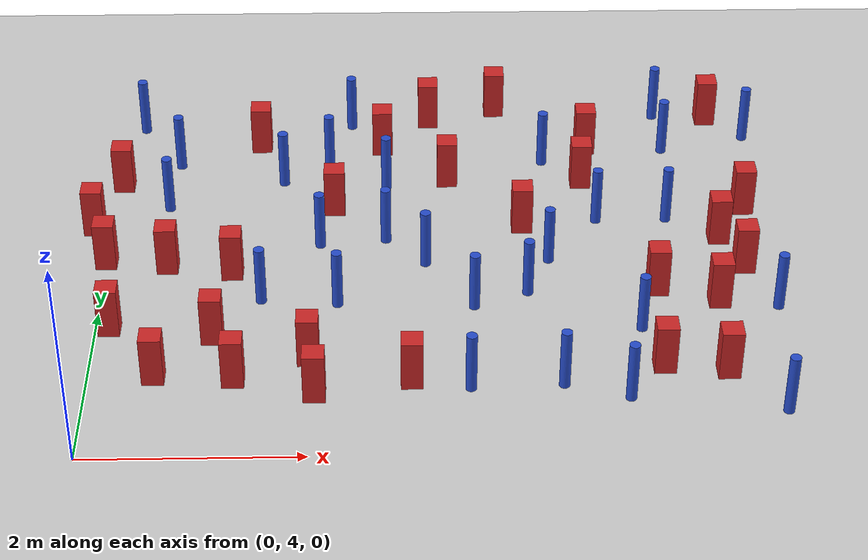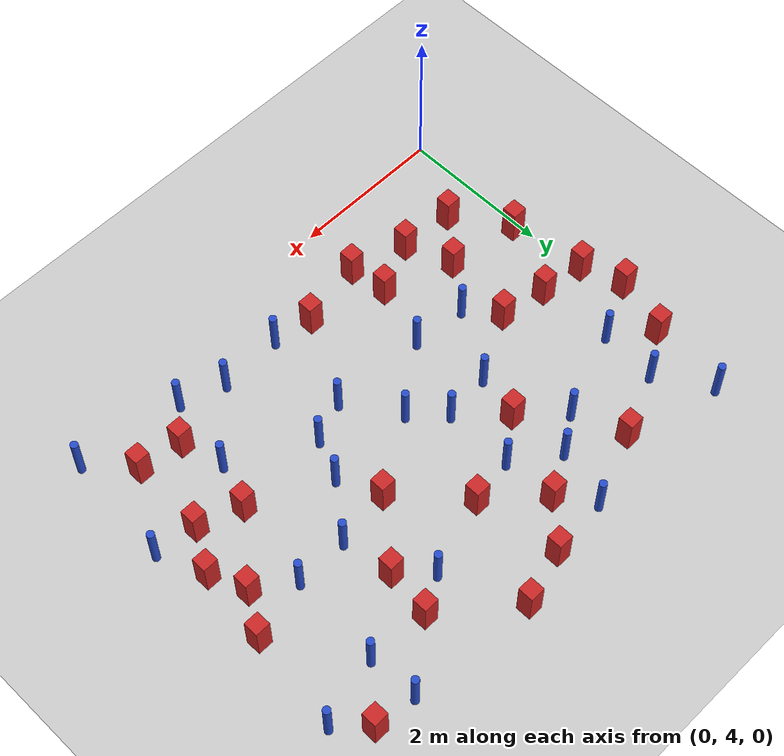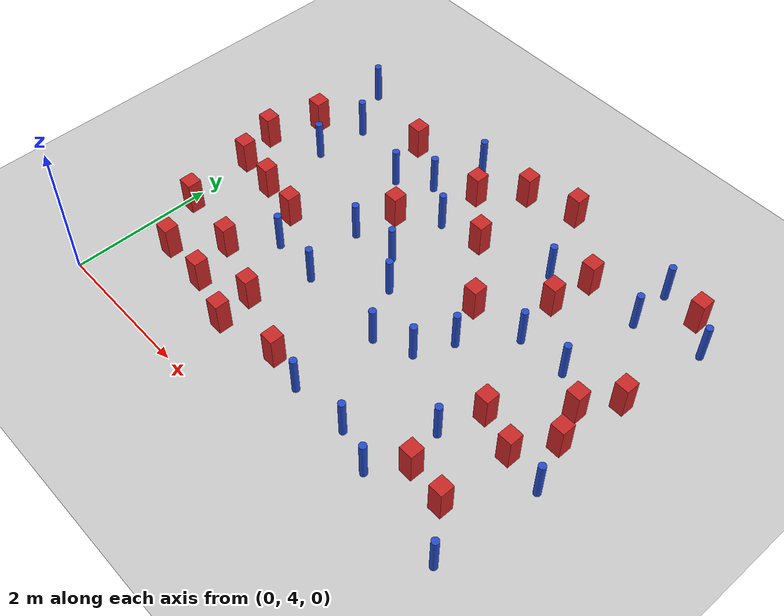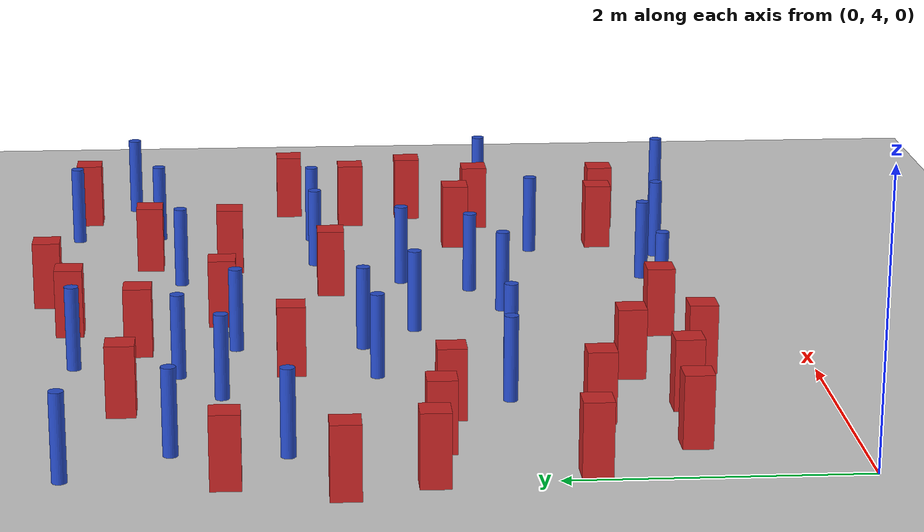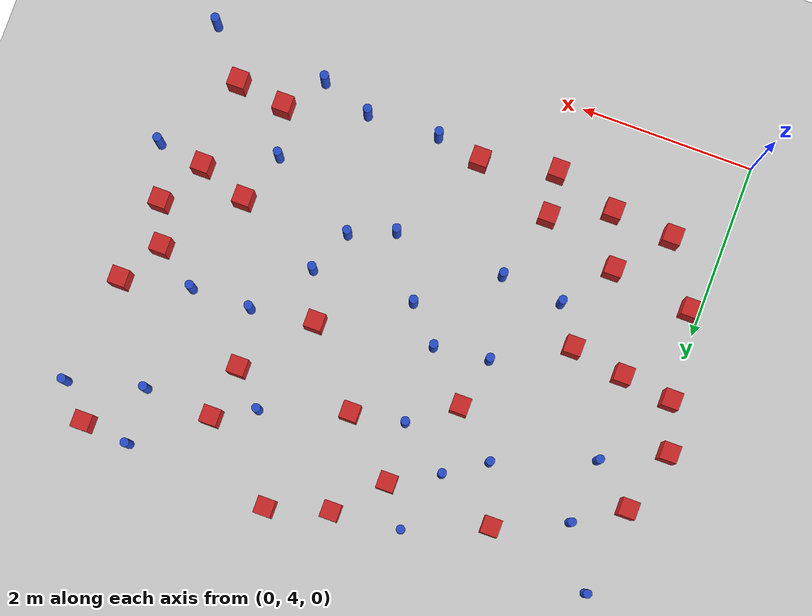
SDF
<sdf version="1.6">
 <world name="default">
  <model name="ground_plane">
   <static>1</static>
   <link name="link">
    <collision name="collision">
     <geometry><plane><normal>0 0 1</normal><size>100 100</size></plane></geometry>
     <surface><friction><ode><mu>100</mu><mu2>50</mu2></ode></friction></surface>
    </collision>
    <visual name="visual">
     <cast_shadows>0</cast_shadows>
     <geometry><plane><normal>0 0 1</normal><size>100 100</size></plane></geometry>
     <material>
      <ambient>1.0 1.0 1.0 1.0</ambient>
      <diffuse>0.8 0.8 0.8 1.0</diffuse>
      <specular>0.01 0.01 0.01 1.000000</specular>
     </material>
    </visual>
   </link>
  </model>
  <model name="pole_obstacle0">
   <static>true</static>
   <pose>4.72568806612 7.41263253163 -9.47619616065e-06 5.49618799737e-07 2.36310414037e-07 -1.55090534814e-07</pose>
   <link name="link">
    <pose>0 0 0.3 0 -0 0</pose>
    <inertial>
     <mass>1</mass>
     <inertia><ixx>0.145833</ixx><ixy>0</ixy><ixz>0</ixz><iyy>0.145833</iyy><iyz>0</iyz><izz>0.125</izz></inertia>
    </inertial>
    <collision name="collision">
     <geometry><cylinder><radius>0.05</radius><length>.6</length></cylinder></geometry>
    </collision>
    <visual name="visual">
     <geometry><cylinder><radius>0.05</radius><length>.6</length></cylinder></geometry>
     <material>
      <script><name>Gazebo/Blue</name><uri>file://media/materials/scripts/gazebo.material</uri></script>
     </material>
    </visual>
   </link>
  </model>
  <model name="square_post_obstacle3">
   <static>true</static>
   <pose>5.77406285056 6.09286928561 -6.11067671241e-07 -5.50515727128e-06 -8.79689657224e-07 2.37013304536e-05</pose>
   <link name="link">
    <pose>0 0 0.25 0 -0 0</pose>
    <inertial>
     <mass>100</mass>
     <inertia>
      <ixx>0.166667</ixx>
      <ixy>0</ixy>
      <ixz>0</ixz>
      <iyy>0.166667</iyy>
      <iyz>0</iyz>
      <izz>0.166667</izz>
     </inertia>
    </inertial>
    <collision name="collision"><geometry><box><size>.2 .2 .5</size></box></geometry></collision>
    <visual name="visual">
     <geometry><box><size>.2 .2 .5</size></box></geometry>
     <material>
      <script><name>Gazebo/Red</name><uri>file://media/materials/scripts/gazebo.material</uri></script>
     </material>
    </visual>
   </link>
  </model>
  <model name="pole_obstacle8">
   <static>true</static>
   <pose>1.50054680214 6.17369226299 -9.47619616065e-06 5.49618799737e-07 2.36310414061e-07 -1.550905348e-07</pose>
   <link name="link">
    <pose>0 0 0.3 0 -0 0</pose>
    <inertial>
     <mass>1</mass>
     <inertia><ixx>0.145833</ixx><ixy>0</ixy><ixz>0</ixz><iyy>0.145833</iyy><iyz>0</iyz><izz>0.125</izz></inertia>
    </inertial>
    <collision name="collision">
     <geometry><cylinder><radius>0.05</radius><length>.6</length></cylinder></geometry>
    </collision>
    <visual name="visual">
     <geometry><cylinder><radius>0.05</radius><length>.6</length></cylinder></geometry>
     <material>
      <script><name>Gazebo/Blue</name><uri>file://media/materials/scripts/gazebo.material</uri></script>
     </material>
    </visual>
   </link>
  </model>
  <model name="square_post_obstacle17">
   <static>true</static>
   <pose>4.70733697189 8.68863369773 -6.11067671241e-07 -5.50515727128e-06 -8.79689657224e-07 2.37013304536e-05</pose>
   <link name="link">
    <pose>0 0 0.25 0 -0 0</pose>
    <inertial>
     <mass>100</mass>
     <inertia>
      <ixx>0.166667</ixx>
      <ixy>0</ixy>
      <ixz>0</ixz>
      <iyy>0.166667</iyy>
      <iyz>0</iyz>
      <izz>0.166667</izz>
     </inertia>
    </inertial>
    <collision name="collision"><geometry><box><size>.2 .2 .5</size></box></geometry></collision>
    <visual name="visual">
     <geometry><box><size>.2 .2 .5</size></box></geometry>
     <material>
      <script><name>Gazebo/Red</name><uri>file://media/materials/scripts/gazebo.material</uri></script>
     </material>
    </visual>
   </link>
  </model>
  <model name="pole_obstacle23">
   <static>true</static>
   <pose>3.48770243604 6.05372144866 -9.47619616065e-06 5.49618799738e-07 2.3631041406e-07 -1.55090534801e-07</pose>
   <link name="link">
    <pose>0 0 0.3 0 -0 0</pose>
    <inertial>
     <mass>1</mass>
     <inertia><ixx>0.145833</ixx><ixy>0</ixy><ixz>0</ixz><iyy>0.145833</iyy><iyz>0</iyz><izz>0.125</izz></inertia>
    </inertial>
    <collision name="collision">
     <geometry><cylinder><radius>0.05</radius><length>.6</length></cylinder></geometry>
    </collision>
    <visual name="visual">
     <geometry><cylinder><radius>0.05</radius><length>.6</length></cylinder></geometry>
     <material>
      <script><name>Gazebo/Blue</name><uri>file://media/materials/scripts/gazebo.material</uri></script>
     </material>
    </visual>
   </link>
  </model>
  <model name="pole_obstacle24">
   <static>true</static>
   <pose>5.0156992939 5.70338469669 -9.47619616065e-06 5.49618799737e-07 2.36310414037e-07 -1.55090534814e-07</pose>
   <link name="link">
    <pose>0 0 0.3 0 -0 0</pose>
    <inertial>
     <mass>1</mass>
     <inertia><ixx>0.145833</ixx><ixy>0</ixy><ixz>0</ixz><iyy>0.145833</iyy><iyz>0</iyz><izz>0.125</izz></inertia>
    </inertial>
    <collision name="collision">
     <geometry><cylinder><radius>0.05</radius><length>.6</length></cylinder></geometry>
    </collision>
    <visual name="visual">
     <geometry><cylinder><radius>0.05</radius><length>.6</length></cylinder></geometry>
     <material>
      <script><name>Gazebo/Blue</name><uri>file://media/materials/scripts/gazebo.material</uri></script>
     </material>
    </visual>
   </link>
  </model>
  <model name="pole_obstacle33">
   <static>true</static>
   <pose>4.24775527219 4.91328178062 -9.47619616065e-06 5.49618799737e-07 2.36310414037e-07 -1.55090534814e-07</pose>
   <link name="link">
    <pose>0 0 0.3 0 -0 0</pose>
    <inertial>
     <mass>1</mass>
     <inertia><ixx>0.145833</ixx><ixy>0</ixy><ixz>0</ixz><iyy>0.145833</iyy><iyz>0</iyz><izz>0.125</izz></inertia>
    </inertial>
    <collision name="collision">
     <geometry><cylinder><radius>0.05</radius><length>.6</length></cylinder></geometry>
    </collision>
    <visual name="visual">
     <geometry><cylinder><radius>0.05</radius><length>.6</length></cylinder></geometry>
     <material>
      <script><name>Gazebo/Blue</name><uri>file://media/materials/scripts/gazebo.material</uri></script>
     </material>
    </visual>
   </link>
  </model>
  <model name="pole_obstacle39">
   <static>true</static>
   <pose>2.09817483789 8.41139426477 -9.4761961606e-06 5.49618799729e-07 2.36310414e-07 -1.55090534824e-07</pose>
   <link name="link">
    <pose>0 0 0.3 0 -0 0</pose>
    <inertial>
     <mass>1</mass>
     <inertia><ixx>0.145833</ixx><ixy>0</ixy><ixz>0</ixz><iyy>0.145833</iyy><iyz>0</iyz><izz>0.125</izz></inertia>
    </inertial>
    <collision name="collision">
     <geometry><cylinder><radius>0.05</radius><length>.6</length></cylinder></geometry>
    </collision>
    <visual name="visual">
     <geometry><cylinder><radius>0.05</radius><length>.6</length></cylinder></geometry>
     <material>
      <script><name>Gazebo/Blue</name><uri>file://media/materials/scripts/gazebo.material</uri></script>
     </material>
    </visual>
   </link>
  </model>
  <model name="pole_obstacle40">
   <static>true</static>
   <pose>2.67155848395 8.01683245756 -9.47619616065e-06 5.49618799737e-07 2.3631041406e-07 -1.55090534799e-07</pose>
   <link name="link">
    <pose>0 0 0.3 0 -0 0</pose>
    <inertial>
     <mass>1</mass>
     <inertia><ixx>0.145833</ixx><ixy>0</ixy><ixz>0</ixz><iyy>0.145833</iyy><iyz>0</iyz><izz>0.125</izz></inertia>
    </inertial>
    <collision name="collision">
     <geometry><cylinder><radius>0.05</radius><length>.6</length></cylinder></geometry>
    </collision>
    <visual name="visual">
     <geometry><cylinder><radius>0.05</radius><length>.6</length></cylinder></geometry>
     <material>
      <script><name>Gazebo/Blue</name><uri>file://media/materials/scripts/gazebo.material</uri></script>
     </material>
    </visual>
   </link>
  </model>
  <model name="pole_obstacle43">
   <static>true</static>
   <pose>0.16672768601 9.10504932551 -9.47619616065e-06 5.49618799737e-07 2.36310414033e-07 -1.55090534817e-07</pose>
   <link name="link">
    <pose>0 0 0.3 0 -0 0</pose>
    <inertial>
     <mass>1</mass>
     <inertia><ixx>0.145833</ixx><ixy>0</ixy><ixz>0</ixz><iyy>0.145833</iyy><iyz>0</iyz><izz>0.125</izz></inertia>
    </inertial>
    <collision name="collision">
     <geometry><cylinder><radius>0.05</radius><length>.6</length></cylinder></geometry>
    </collision>
    <visual name="visual">
     <geometry><cylinder><radius>0.05</radius><length>.6</length></cylinder></geometry>
     <material>
      <script><name>Gazebo/Blue</name><uri>file://media/materials/scripts/gazebo.material</uri></script>
     </material>
    </visual>
   </link>
  </model>
  <model name="pole_obstacle44">
   <static>true</static>
   <pose>3.04289075134 6.73097264945 -9.47619616065e-06 5.49618799738e-07 2.3631041406e-07 -1.55090534801e-07</pose>
   <link name="link">
    <pose>0 0 0.3 0 -0 0</pose>
    <inertial>
     <mass>1</mass>
     <inertia><ixx>0.145833</ixx><ixy>0</ixy><ixz>0</ixz><iyy>0.145833</iyy><iyz>0</iyz><izz>0.125</izz></inertia>
    </inertial>
    <collision name="collision">
     <geometry><cylinder><radius>0.05</radius><length>.6</length></cylinder></geometry>
    </collision>
    <visual name="visual">
     <geometry><cylinder><radius>0.05</radius><length>.6</length></cylinder></geometry>
     <material>
      <script><name>Gazebo/Blue</name><uri>file://media/materials/scripts/gazebo.material</uri></script>
     </material>
    </visual>
   </link>
  </model>
  <model name="square_post_obstacle43">
   <static>true</static>
   <pose>-0.174412498012 7.34010113762 -6.11067671241e-07 -5.50515727128e-06 -8.79689657224e-07 2.37013304536e-05</pose>
   <link name="link">
    <pose>0 0 0.25 0 -0 0</pose>
    <inertial>
     <mass>100</mass>
     <inertia>
      <ixx>0.166667</ixx>
      <ixy>0</ixy>
      <ixz>0</ixz>
      <iyy>0.166667</iyy>
      <iyz>0</iyz>
      <izz>0.166667</izz>
     </inertia>
    </inertial>
    <collision name="collision"><geometry><box><size>.2 .2 .5</size></box></geometry></collision>
    <visual name="visual">
     <geometry><box><size>.2 .2 .5</size></box></geometry>
     <material>
      <script><name>Gazebo/Red</name><uri>file://media/materials/scripts/gazebo.material</uri></script>
     </material>
    </visual>
   </link>
  </model>
  <model name="square_post_obstacle58">
   <static>true</static>
   <pose>4.61769892099 8.07156595168 -6.11067671241e-07 -5.50515727128e-06 -8.79689657224e-07 2.37013304536e-05</pose>
   <link name="link">
    <pose>0 0 0.25 0 -0 0</pose>
    <inertial>
     <mass>100</mass>
     <inertia>
      <ixx>0.166667</ixx>
      <ixy>0</ixy>
      <ixz>0</ixz>
      <iyy>0.166667</iyy>
      <iyz>0</iyz>
      <izz>0.166667</izz>
     </inertia>
    </inertial>
    <collision name="collision"><geometry><box><size>.2 .2 .5</size></box></geometry></collision>
    <visual name="visual">
     <geometry><box><size>.2 .2 .5</size></box></geometry>
     <material>
      <script><name>Gazebo/Red</name><uri>file://media/materials/scripts/gazebo.material</uri></script>
     </material>
    </visual>
   </link>
  </model>
  <model name="pole_obstacle56">
   <static>true</static>
   <pose>4.2535718611 8.4405663089 -9.47619616065e-06 5.49618799737e-07 2.36310414065e-07 -1.55090534796e-07</pose>
   <link name="link">
    <pose>0 0 0.3 0 -0 0</pose>
    <inertial>
     <mass>1</mass>
     <inertia><ixx>0.145833</ixx><ixy>0</ixy><ixz>0</ixz><iyy>0.145833</iyy><iyz>0</iyz><izz>0.125</izz></inertia>
    </inertial>
    <collision name="collision">
     <geometry><cylinder><radius>0.05</radius><length>.6</length></cylinder></geometry>
    </collision>
    <visual name="visual">
     <geometry><cylinder><radius>0.05</radius><length>.6</length></cylinder></geometry>
     <material>
      <script><name>Gazebo/Blue</name><uri>file://media/materials/scripts/gazebo.material</uri></script>
     </material>
    </visual>
   </link>
  </model>
  <model name="pole_obstacle59">
   <static>true</static>
   <pose>3.41740284959 4.88030279164 -9.47619616065e-06 5.49618799738e-07 2.3631041406e-07 -1.55090534801e-07</pose>
   <link name="link">
    <pose>0 0 0.3 0 -0 0</pose>
    <inertial>
     <mass>1</mass>
     <inertia><ixx>0.145833</ixx><ixy>0</ixy><ixz>0</ixz><iyy>0.145833</iyy><iyz>0</iyz><izz>0.125</izz></inertia>
    </inertial>
    <collision name="collision">
     <geometry><cylinder><radius>0.05</radius><length>.6</length></cylinder></geometry>
    </collision>
    <visual name="visual">
     <geometry><cylinder><radius>0.05</radius><length>.6</length></cylinder></geometry>
     <material>
      <script><name>Gazebo/Blue</name><uri>file://media/materials/scripts/gazebo.material</uri></script>
     </material>
    </visual>
   </link>
  </model>
  <model name="square_post_obstacle72">
   <static>true</static>
   <pose>1.39468802769 8.77378687064 -6.11067671241e-07 -5.50515727128e-06 -8.79689657224e-07 2.37013304536e-05</pose>
   <link name="link">
    <pose>0 0 0.25 0 -0 0</pose>
    <inertial>
     <mass>100</mass>
     <inertia>
      <ixx>0.166667</ixx>
      <ixy>0</ixy>
      <ixz>0</ixz>
      <iyy>0.166667</iyy>
      <iyz>0</iyz>
      <izz>0.166667</izz>
     </inertia>
    </inertial>
    <collision name="collision"><geometry><box><size>.2 .2 .5</size></box></geometry></collision>
    <visual name="visual">
     <geometry><box><size>.2 .2 .5</size></box></geometry>
     <material>
      <script><name>Gazebo/Red</name><uri>file://media/materials/scripts/gazebo.material</uri></script>
     </material>
    </visual>
   </link>
  </model>
  <model name="pole_obstacle71">
   <static>true</static>
   <pose>2.66570851881 7.11695397287 -9.47619616065e-06 5.49618799738e-07 2.3631041406e-07 -1.55090534801e-07</pose>
   <link name="link">
    <pose>0 0 0.3 0 -0 0</pose>
    <inertial>
     <mass>1</mass>
     <inertia><ixx>0.145833</ixx><ixy>0</ixy><ixz>0</ixz><iyy>0.145833</iyy><iyz>0</iyz><izz>0.125</izz></inertia>
    </inertial>
    <collision name="collision">
     <geometry><cylinder><radius>0.05</radius><length>.6</length></cylinder></geometry>
    </collision>
    <visual name="visual">
     <geometry><cylinder><radius>0.05</radius><length>.6</length></cylinder></geometry>
     <material>
      <script><name>Gazebo/Blue</name><uri>file://media/materials/scripts/gazebo.material</uri></script>
     </material>
    </visual>
   </link>
  </model>
  <model name="square_post_obstacle77">
   <static>true</static>
   <pose>0.592847950131 5.0619389971 -6.11067671241e-07 -5.50515727128e-06 -8.79689657224e-07 2.37013304536e-05</pose>
   <link name="link">
    <pose>0 0 0.25 0 -0 0</pose>
    <inertial>
     <mass>100</mass>
     <inertia>
      <ixx>0.166667</ixx>
      <ixy>0</ixy>
      <ixz>0</ixz>
      <iyy>0.166667</iyy>
      <iyz>0</iyz>
      <izz>0.166667</izz>
     </inertia>
    </inertial>
    <collision name="collision"><geometry><box><size>.2 .2 .5</size></box></geometry></collision>
    <visual name="visual">
     <geometry><box><size>.2 .2 .5</size></box></geometry>
     <material>
      <script><name>Gazebo/Red</name><uri>file://media/materials/scripts/gazebo.material</uri></script>
     </material>
    </visual>
   </link>
  </model>
  <model name="pole_obstacle85">
   <static>true</static>
   <pose>2.03308258936 7.0443986622 -9.47619616065e-06 5.49618799737e-07 2.36310414059e-07 -1.55090534802e-07</pose>
   <link name="link">
    <pose>0 0 0.3 0 -0 0</pose>
    <inertial>
     <mass>1</mass>
     <inertia><ixx>0.145833</ixx><ixy>0</ixy><ixz>0</ixz><iyy>0.145833</iyy><iyz>0</iyz><izz>0.125</izz></inertia>
    </inertial>
    <collision name="collision">
     <geometry><cylinder><radius>0.05</radius><length>.6</length></cylinder></geometry>
    </collision>
    <visual name="visual">
     <geometry><cylinder><radius>0.05</radius><length>.6</length></cylinder></geometry>
     <material>
      <script><name>Gazebo/Blue</name><uri>file://media/materials/scripts/gazebo.material</uri></script>
     </material>
    </visual>
   </link>
  </model>
  <model name="square_post_obstacle82">
   <static>true</static>
   <pose>1.21018317035 6.59509498887 -6.11067671241e-07 -5.50515727128e-06 -8.79689657224e-07 2.37013304536e-05</pose>
   <link name="link">
    <pose>0 0 0.25 0 -0 0</pose>
    <inertial>
     <mass>100</mass>
     <inertia>
      <ixx>0.166667</ixx>
      <ixy>0</ixy>
      <ixz>0</ixz>
      <iyy>0.166667</iyy>
      <iyz>0</iyz>
      <izz>0.166667</izz>
     </inertia>
    </inertial>
    <collision name="collision"><geometry><box><size>.2 .2 .5</size></box></geometry></collision>
    <visual name="visual">
     <geometry><box><size>.2 .2 .5</size></box></geometry>
     <material>
      <script><name>Gazebo/Red</name><uri>file://media/materials/scripts/gazebo.material</uri></script>
     </material>
    </visual>
   </link>
  </model>
  <model name="pole_obstacle92">
   <static>true</static>
   <pose>3.99570382269 6.25960563795 -9.47619616065e-06 5.49618799737e-07 2.36310414049e-07 -1.55090534808e-07</pose>
   <link name="link">
    <pose>0 0 0.3 0 -0 0</pose>
    <inertial>
     <mass>1</mass>
     <inertia><ixx>0.145833</ixx><ixy>0</ixy><ixz>0</ixz><iyy>0.145833</iyy><iyz>0</iyz><izz>0.125</izz></inertia>
    </inertial>
    <collision name="collision">
     <geometry><cylinder><radius>0.05</radius><length>.6</length></cylinder></geometry>
    </collision>
    <visual name="visual">
     <geometry><cylinder><radius>0.05</radius><length>.6</length></cylinder></geometry>
     <material>
      <script><name>Gazebo/Blue</name><uri>file://media/materials/scripts/gazebo.material</uri></script>
     </material>
    </visual>
   </link>
  </model>
  <model name="square_post_obstacle84">
   <static>true</static>
   <pose>0.131072374712 5.76255984843 -6.11067671241e-07 -5.50515727128e-06 -8.79689657224e-07 2.37013304536e-05</pose>
   <link name="link">
    <pose>0 0 0.25 0 -0 0</pose>
    <inertial>
     <mass>100</mass>
     <inertia>
      <ixx>0.166667</ixx>
      <ixy>0</ixy>
      <ixz>0</ixz>
      <iyy>0.166667</iyy>
      <iyz>0</iyz>
      <izz>0.166667</izz>
     </inertia>
    </inertial>
    <collision name="collision"><geometry><box><size>.2 .2 .5</size></box></geometry></collision>
    <visual name="visual">
     <geometry><box><size>.2 .2 .5</size></box></geometry>
     <material>
      <script><name>Gazebo/Red</name><uri>file://media/materials/scripts/gazebo.material</uri></script>
     </material>
    </visual>
   </link>
  </model>
  <model name="pole_obstacle109">
   <static>true</static>
   <pose>5.50031654187 8.640774783 -9.47619616065e-06 5.49618799737e-07 2.36310414065e-07 -1.55090534796e-07</pose>
   <link name="link">
    <pose>0 0 0.3 0 -0 0</pose>
    <inertial>
     <mass>1</mass>
     <inertia><ixx>0.145833</ixx><ixy>0</ixy><ixz>0</ixz><iyy>0.145833</iyy><iyz>0</iyz><izz>0.125</izz></inertia>
    </inertial>
    <collision name="collision">
     <geometry><cylinder><radius>0.05</radius><length>.6</length></cylinder></geometry>
    </collision>
    <visual name="visual">
     <geometry><cylinder><radius>0.05</radius><length>.6</length></cylinder></geometry>
     <material>
      <script><name>Gazebo/Blue</name><uri>file://media/materials/scripts/gazebo.material</uri></script>
     </material>
    </visual>
   </link>
  </model>
  <model name="square_post_obstacle100">
   <static>true</static>
   <pose>6.07664666427 6.62552926888 -6.11067671241e-07 -5.50515727128e-06 -8.79689657224e-07 2.37013304536e-05</pose>
   <link name="link">
    <pose>0 0 0.25 0 -0 0</pose>
    <inertial>
     <mass>100</mass>
     <inertia>
      <ixx>0.166667</ixx>
      <ixy>0</ixy>
      <ixz>0</ixz>
      <iyy>0.166667</iyy>
      <iyz>0</iyz>
      <izz>0.166667</izz>
     </inertia>
    </inertial>
    <collision name="collision"><geometry><box><size>.2 .2 .5</size></box></geometry></collision>
    <visual name="visual">
     <geometry><box><size>.2 .2 .5</size></box></geometry>
     <material>
      <script><name>Gazebo/Red</name><uri>file://media/materials/scripts/gazebo.material</uri></script>
     </material>
    </visual>
   </link>
  </model>
  <model name="pole_obstacle115">
   <static>true</static>
   <pose>4.82389223177 4.72782685846 -9.47619616065e-06 5.49618799737e-07 2.36310414037e-07 -1.55090534814e-07</pose>
   <link name="link">
    <pose>0 0 0.3 0 -0 0</pose>
    <inertial>
     <mass>1</mass>
     <inertia><ixx>0.145833</ixx><ixy>0</ixy><ixz>0</ixz><iyy>0.145833</iyy><iyz>0</iyz><izz>0.125</izz></inertia>
    </inertial>
    <collision name="collision">
     <geometry><cylinder><radius>0.05</radius><length>.6</length></cylinder></geometry>
    </collision>
    <visual name="visual">
     <geometry><cylinder><radius>0.05</radius><length>.6</length></cylinder></geometry>
     <material>
      <script><name>Gazebo/Blue</name><uri>file://media/materials/scripts/gazebo.material</uri></script>
     </material>
    </visual>
   </link>
  </model>
  <model name="pole_obstacle117">
   <static>true</static>
   <pose>5.47230003871 9.2865529213 -9.47619616065e-06 5.49618799737e-07 2.36310414065e-07 -1.55090534796e-07</pose>
   <link name="link">
    <pose>0 0 0.3 0 -0 0</pose>
    <inertial>
     <mass>1</mass>
     <inertia><ixx>0.145833</ixx><ixy>0</ixy><ixz>0</ixz><iyy>0.145833</iyy><iyz>0</iyz><izz>0.125</izz></inertia>
    </inertial>
    <collision name="collision">
     <geometry><cylinder><radius>0.05</radius><length>.6</length></cylinder></geometry>
    </collision>
    <visual name="visual">
     <geometry><cylinder><radius>0.05</radius><length>.6</length></cylinder></geometry>
     <material>
      <script><name>Gazebo/Blue</name><uri>file://media/materials/scripts/gazebo.material</uri></script>
     </material>
    </visual>
   </link>
  </model>
  <model name="square_post_obstacle107">
   <static>true</static>
   <pose>5.16070619063 5.15391042873 -6.11067671241e-07 -5.50515727128e-06 -8.79689657224e-07 2.37013304536e-05</pose>
   <link name="link">
    <pose>0 0 0.25 0 -0 0</pose>
    <inertial>
     <mass>100</mass>
     <inertia>
      <ixx>0.166667</ixx>
      <ixy>0</ixy>
      <ixz>0</ixz>
      <iyy>0.166667</iyy>
      <iyz>0</iyz>
      <izz>0.166667</izz>
     </inertia>
    </inertial>
    <collision name="collision"><geometry><box><size>.2 .2 .5</size></box></geometry></collision>
    <visual name="visual">
     <geometry><box><size>.2 .2 .5</size></box></geometry>
     <material>
      <script><name>Gazebo/Red</name><uri>file://media/materials/scripts/gazebo.material</uri></script>
     </material>
    </visual>
   </link>
  </model>
  <model name="square_post_obstacle112">
   <static>true</static>
   <pose>0.044722458171 8.07411722889 -6.11067671241e-07 -5.50515727128e-06 -8.79689657224e-07 2.37013304536e-05</pose>
   <link name="link">
    <pose>0 0 0.25 0 -0 0</pose>
    <inertial>
     <mass>100</mass>
     <inertia>
      <ixx>0.166667</ixx>
      <ixy>0</ixy>
      <ixz>0</ixz>
      <iyy>0.166667</iyy>
      <iyz>0</iyz>
      <izz>0.166667</izz>
     </inertia>
    </inertial>
    <collision name="collision"><geometry><box><size>.2 .2 .5</size></box></geometry></collision>
    <visual name="visual">
     <geometry><box><size>.2 .2 .5</size></box></geometry>
     <material>
      <script><name>Gazebo/Red</name><uri>file://media/materials/scripts/gazebo.material</uri></script>
     </material>
    </visual>
   </link>
  </model>
  <model name="pole_obstacle128">
   <static>true</static>
   <pose>4.2207733198 6.76593169142 -9.47619616065e-06 5.49618799737e-07 2.36310414037e-07 -1.55090534814e-07</pose>
   <link name="link">
    <pose>0 0 0.3 0 -0 0</pose>
    <inertial>
     <mass>1</mass>
     <inertia><ixx>0.145833</ixx><ixy>0</ixy><ixz>0</ixz><iyy>0.145833</iyy><iyz>0</iyz><izz>0.125</izz></inertia>
    </inertial>
    <collision name="collision">
     <geometry><cylinder><radius>0.05</radius><length>.6</length></cylinder></geometry>
    </collision>
    <visual name="visual">
     <geometry><cylinder><radius>0.05</radius><length>.6</length></cylinder></geometry>
     <material>
      <script><name>Gazebo/Blue</name><uri>file://media/materials/scripts/gazebo.material</uri></script>
     </material>
    </visual>
   </link>
  </model>
  <model name="pole_obstacle130">
   <static>true</static>
   <pose>6.18621930184 4.53348082351 -9.47619616065e-06 5.49618799737e-07 2.36310414037e-07 -1.55090534814e-07</pose>
   <link name="link">
    <pose>0 0 0.3 0 -0 0</pose>
    <inertial>
     <mass>1</mass>
     <inertia><ixx>0.145833</ixx><ixy>0</ixy><ixz>0</ixz><iyy>0.145833</iyy><iyz>0</iyz><izz>0.125</izz></inertia>
    </inertial>
    <collision name="collision">
     <geometry><cylinder><radius>0.05</radius><length>.6</length></cylinder></geometry>
    </collision>
    <visual name="visual">
     <geometry><cylinder><radius>0.05</radius><length>.6</length></cylinder></geometry>
     <material>
      <script><name>Gazebo/Blue</name><uri>file://media/materials/scripts/gazebo.material</uri></script>
     </material>
    </visual>
   </link>
  </model>
  <model name="pole_obstacle133">
   <static>true</static>
   <pose>6.31955066525 6.01080804972 -9.47619616065e-06 5.49618799737e-07 2.36310414037e-07 -1.55090534814e-07</pose>
   <link name="link">
    <pose>0 0 0.3 0 -0 0</pose>
    <inertial>
     <mass>1</mass>
     <inertia><ixx>0.145833</ixx><ixy>0</ixy><ixz>0</ixz><iyy>0.145833</iyy><iyz>0</iyz><izz>0.125</izz></inertia>
    </inertial>
    <collision name="collision">
     <geometry><cylinder><radius>0.05</radius><length>.6</length></cylinder></geometry>
    </collision>
    <visual name="visual">
     <geometry><cylinder><radius>0.05</radius><length>.6</length></cylinder></geometry>
     <material>
      <script><name>Gazebo/Blue</name><uri>file://media/materials/scripts/gazebo.material</uri></script>
     </material>
    </visual>
   </link>
  </model>
  <model name="pole_obstacle136">
   <static>true</static>
   <pose>0.52955999407 7.680168194 -9.47619616065e-06 5.49618799737e-07 2.36310414064e-07 -1.55090534796e-07</pose>
   <link name="link">
    <pose>0 0 0.3 0 -0 0</pose>
    <inertial>
     <mass>1</mass>
     <inertia><ixx>0.145833</ixx><ixy>0</ixy><ixz>0</ixz><iyy>0.145833</iyy><iyz>0</iyz><izz>0.125</izz></inertia>
    </inertial>
    <collision name="collision">
     <geometry><cylinder><radius>0.05</radius><length>.6</length></cylinder></geometry>
    </collision>
    <visual name="visual">
     <geometry><cylinder><radius>0.05</radius><length>.6</length></cylinder></geometry>
     <material>
      <script><name>Gazebo/Blue</name><uri>file://media/materials/scripts/gazebo.material</uri></script>
     </material>
    </visual>
   </link>
  </model>
  <model name="square_post_obstacle124">
   <static>true</static>
   <pose>1.30416795049 5.01219629163 -6.11067671241e-07 -5.50515727128e-06 -8.79689657224e-07 2.37013304536e-05</pose>
   <link name="link">
    <pose>0 0 0.25 0 -0 0</pose>
    <inertial>
     <mass>100</mass>
     <inertia>
      <ixx>0.166667</ixx>
      <ixy>0</ixy>
      <ixz>0</ixz>
      <iyy>0.166667</iyy>
      <iyz>0</iyz>
      <izz>0.166667</izz>
     </inertia>
    </inertial>
    <collision name="collision"><geometry><box><size>.2 .2 .5</size></box></geometry></collision>
    <visual name="visual">
     <geometry><box><size>.2 .2 .5</size></box></geometry>
     <material>
      <script><name>Gazebo/Red</name><uri>file://media/materials/scripts/gazebo.material</uri></script>
     </material>
    </visual>
   </link>
  </model>
  <model name="pole_obstacle143">
   <static>true</static>
   <pose>2.31495506605 9.14442044912 -9.4761961606e-06 5.49618799729e-07 2.36310414e-07 -1.55090534824e-07</pose>
   <link name="link">
    <pose>0 0 0.3 0 -0 0</pose>
    <inertial>
     <mass>1</mass>
     <inertia><ixx>0.145833</ixx><ixy>0</ixy><ixz>0</ixz><iyy>0.145833</iyy><iyz>0</iyz><izz>0.125</izz></inertia>
    </inertial>
    <collision name="collision">
     <geometry><cylinder><radius>0.05</radius><length>.6</length></cylinder></geometry>
    </collision>
    <visual name="visual">
     <geometry><cylinder><radius>0.05</radius><length>.6</length></cylinder></geometry>
     <material>
      <script><name>Gazebo/Blue</name><uri>file://media/materials/scripts/gazebo.material</uri></script>
     </material>
    </visual>
   </link>
  </model>
  <model name="square_post_obstacle133">
   <static>true</static>
   <pose>2.63406605316 8.70583925422 -6.11067671241e-07 -5.50515727128e-06 -8.79689657224e-07 2.37013304536e-05</pose>
   <link name="link">
    <pose>0 0 0.25 0 -0 0</pose>
    <inertial>
     <mass>100</mass>
     <inertia>
      <ixx>0.166667</ixx>
      <ixy>0</ixy>
      <ixz>0</ixz>
      <iyy>0.166667</iyy>
      <iyz>0</iyz>
      <izz>0.166667</izz>
     </inertia>
    </inertial>
    <collision name="collision"><geometry><box><size>.2 .2 .5</size></box></geometry></collision>
    <visual name="visual">
     <geometry><box><size>.2 .2 .5</size></box></geometry>
     <material>
      <script><name>Gazebo/Red</name><uri>file://media/materials/scripts/gazebo.material</uri></script>
     </material>
    </visual>
   </link>
  </model>
  <model name="pole_obstacle144">
   <static>true</static>
   <pose>2.21433120045 6.10862140931 -9.47619616065e-06 5.49618799738e-07 2.3631041406e-07 -1.55090534801e-07</pose>
   <link name="link">
    <pose>0 0 0.3 0 -0 0</pose>
    <inertial>
     <mass>1</mass>
     <inertia><ixx>0.145833</ixx><ixy>0</ixy><ixz>0</ixz><iyy>0.145833</iyy><iyz>0</iyz><izz>0.125</izz></inertia>
    </inertial>
    <collision name="collision">
     <geometry><cylinder><radius>0.05</radius><length>.6</length></cylinder></geometry>
    </collision>
    <visual name="visual">
     <geometry><cylinder><radius>0.05</radius><length>.6</length></cylinder></geometry>
     <material>
      <script><name>Gazebo/Blue</name><uri>file://media/materials/scripts/gazebo.material</uri></script>
     </material>
    </visual>
   </link>
  </model>
  <model name="square_post_obstacle145">
   <static>true</static>
   <pose>5.72493479438 5.07071234021 -6.11067671241e-07 -5.50515727128e-06 -8.79689657224e-07 2.37013304536e-05</pose>
   <link name="link">
    <pose>0 0 0.25 0 -0 0</pose>
    <inertial>
     <mass>100</mass>
     <inertia>
      <ixx>0.166667</ixx>
      <ixy>0</ixy>
      <ixz>0</ixz>
      <iyy>0.166667</iyy>
      <iyz>0</iyz>
      <izz>0.166667</izz>
     </inertia>
    </inertial>
    <collision name="collision"><geometry><box><size>.2 .2 .5</size></box></geometry></collision>
    <visual name="visual">
     <geometry><box><size>.2 .2 .5</size></box></geometry>
     <material>
      <script><name>Gazebo/Red</name><uri>file://media/materials/scripts/gazebo.material</uri></script>
     </material>
    </visual>
   </link>
  </model>
  <model name="square_post_obstacle148">
   <static>true</static>
   <pose>2.89555116497 4.97400657518 -6.11067671241e-07 -5.50515727128e-06 -8.79689657224e-07 2.37013304536e-05</pose>
   <link name="link">
    <pose>0 0 0.25 0 -0 0</pose>
    <inertial>
     <mass>100</mass>
     <inertia>
      <ixx>0.166667</ixx>
      <ixy>0</ixy>
      <ixz>0</ixz>
      <iyy>0.166667</iyy>
      <iyz>0</iyz>
      <izz>0.166667</izz>
     </inertia>
    </inertial>
    <collision name="collision"><geometry><box><size>.2 .2 .5</size></box></geometry></collision>
    <visual name="visual">
     <geometry><box><size>.2 .2 .5</size></box></geometry>
     <material>
      <script><name>Gazebo/Red</name><uri>file://media/materials/scripts/gazebo.material</uri></script>
     </material>
    </visual>
   </link>
  </model>
  <model name="square_post_obstacle149">
   <static>true</static>
   <pose>2.16263714911 7.63509518086 -6.11067671241e-07 -5.50515727128e-06 -8.79689657224e-07 2.37013304536e-05</pose>
   <link name="link">
    <pose>0 0 0.25 0 -0 0</pose>
    <inertial>
     <mass>100</mass>
     <inertia>
      <ixx>0.166667</ixx>
      <ixy>0</ixy>
      <ixz>0</ixz>
      <iyy>0.166667</iyy>
      <iyz>0</iyz>
      <izz>0.166667</izz>
     </inertia>
    </inertial>
    <collision name="collision"><geometry><box><size>.2 .2 .5</size></box></geometry></collision>
    <visual name="visual">
     <geometry><box><size>.2 .2 .5</size></box></geometry>
     <material>
      <script><name>Gazebo/Red</name><uri>file://media/materials/scripts/gazebo.material</uri></script>
     </material>
    </visual>
   </link>
  </model>
  <model name="pole_obstacle162">
   <static>true</static>
   <pose>5.41274794559 7.42166792316 -9.47619616065e-06 5.49618799737e-07 2.36310414037e-07 -1.55090534814e-07</pose>
   <link name="link">
    <pose>0 0 0.3 0 -0 0</pose>
    <inertial>
     <mass>1</mass>
     <inertia><ixx>0.145833</ixx><ixy>0</ixy><ixz>0</ixz><iyy>0.145833</iyy><iyz>0</iyz><izz>0.125</izz></inertia>
    </inertial>
    <collision name="collision">
     <geometry><cylinder><radius>0.05</radius><length>.6</length></cylinder></geometry>
    </collision>
    <visual name="visual">
     <geometry><cylinder><radius>0.05</radius><length>.6</length></cylinder></geometry>
     <material>
      <script><name>Gazebo/Blue</name><uri>file://media/materials/scripts/gazebo.material</uri></script>
     </material>
    </visual>
   </link>
  </model>
  <model name="square_post_obstacle159">
   <static>true</static>
   <pose>3.80109074335 9.42114867542 -6.11067671241e-07 -5.50515727128e-06 -8.79689657224e-07 2.37013304536e-05</pose>
   <link name="link">
    <pose>0 0 0.25 0 -0 0</pose>
    <inertial>
     <mass>100</mass>
     <inertia>
      <ixx>0.166667</ixx>
      <ixy>0</ixy>
      <ixz>0</ixz>
      <iyy>0.166667</iyy>
      <iyz>0</iyz>
      <izz>0.166667</izz>
     </inertia>
    </inertial>
    <collision name="collision"><geometry><box><size>.2 .2 .5</size></box></geometry></collision>
    <visual name="visual">
     <geometry><box><size>.2 .2 .5</size></box></geometry>
     <material>
      <script><name>Gazebo/Red</name><uri>file://media/materials/scripts/gazebo.material</uri></script>
     </material>
    </visual>
   </link>
  </model>
  <model name="square_post_obstacle170">
   <static>true</static>
   <pose>0.589045166748 6.70242248074 -6.11067671241e-07 -5.50515727128e-06 -8.79689657224e-07 2.37013304536e-05</pose>
   <link name="link">
    <pose>0 0 0.25 0 -0 0</pose>
    <inertial>
     <mass>100</mass>
     <inertia>
      <ixx>0.166667</ixx>
      <ixy>0</ixy>
      <ixz>0</ixz>
      <iyy>0.166667</iyy>
      <iyz>0</iyz>
      <izz>0.166667</izz>
     </inertia>
    </inertial>
    <collision name="collision"><geometry><box><size>.2 .2 .5</size></box></geometry></collision>
    <visual name="visual">
     <geometry><box><size>.2 .2 .5</size></box></geometry>
     <material>
      <script><name>Gazebo/Red</name><uri>file://media/materials/scripts/gazebo.material</uri></script>
     </material>
    </visual>
   </link>
  </model>
  <model name="square_post_obstacle171">
   <static>true</static>
   <pose>5.21490865473 6.28713445055 -6.11067671241e-07 -5.50515727128e-06 -8.79689657224e-07 2.37013304536e-05</pose>
   <link name="link">
    <pose>0 0 0.25 0 -0 0</pose>
    <inertial>
     <mass>100</mass>
     <inertia>
      <ixx>0.166667</ixx>
      <ixy>0</ixy>
      <ixz>0</ixz>
      <iyy>0.166667</iyy>
      <iyz>0</iyz>
      <izz>0.166667</izz>
     </inertia>
    </inertial>
    <collision name="collision"><geometry><box><size>.2 .2 .5</size></box></geometry></collision>
    <visual name="visual">
     <geometry><box><size>.2 .2 .5</size></box></geometry>
     <material>
      <script><name>Gazebo/Red</name><uri>file://media/materials/scripts/gazebo.material</uri></script>
     </material>
    </visual>
   </link>
  </model>
  <model name="square_post_obstacle172">
   <static>true</static>
   <pose>3.27948859262 8.11986040057 -6.11067671241e-07 -5.50515727128e-06 -8.79689657224e-07 2.37013304536e-05</pose>
   <link name="link">
    <pose>0 0 0.25 0 -0 0</pose>
    <inertial>
     <mass>100</mass>
     <inertia>
      <ixx>0.166667</ixx>
      <ixy>0</ixy>
      <ixz>0</ixz>
      <iyy>0.166667</iyy>
      <iyz>0</iyz>
      <izz>0.166667</izz>
     </inertia>
    </inertial>
    <collision name="collision"><geometry><box><size>.2 .2 .5</size></box></geometry></collision>
    <visual name="visual">
     <geometry><box><size>.2 .2 .5</size></box></geometry>
     <material>
      <script><name>Gazebo/Red</name><uri>file://media/materials/scripts/gazebo.material</uri></script>
     </material>
    </visual>
   </link>
  </model>
  <model name="square_post_obstacle177">
   <static>true</static>
   <pose>6.19066486874 7.59420213776 -6.11067671241e-07 -5.50515727128e-06 -8.79689657224e-07 2.37013304536e-05</pose>
   <link name="link">
    <pose>0 0 0.25 0 -0 0</pose>
    <inertial>
     <mass>100</mass>
     <inertia>
      <ixx>0.166667</ixx>
      <ixy>0</ixy>
      <ixz>0</ixz>
      <iyy>0.166667</iyy>
      <iyz>0</iyz>
      <izz>0.166667</izz>
     </inertia>
    </inertial>
    <collision name="collision"><geometry><box><size>.2 .2 .5</size></box></geometry></collision>
    <visual name="visual">
     <geometry><box><size>.2 .2 .5</size></box></geometry>
     <material>
      <script><name>Gazebo/Red</name><uri>file://media/materials/scripts/gazebo.material</uri></script>
     </material>
    </visual>
   </link>
  </model>
  <model name="square_post_obstacle185">
   <static>true</static>
   <pose>1.08216467493 5.62136095839 -6.11067671241e-07 -5.50515727128e-06 -8.79689657224e-07 2.37013304536e-05</pose>
   <link name="link">
    <pose>0 0 0.25 0 -0 0</pose>
    <inertial>
     <mass>100</mass>
     <inertia>
      <ixx>0.166667</ixx>
      <ixy>0</ixy>
      <ixz>0</ixz>
      <iyy>0.166667</iyy>
      <iyz>0</iyz>
      <izz>0.166667</izz>
     </inertia>
    </inertial>
    <collision name="collision"><geometry><box><size>.2 .2 .5</size></box></geometry></collision>
    <visual name="visual">
     <geometry><box><size>.2 .2 .5</size></box></geometry>
     <material>
      <script><name>Gazebo/Red</name><uri>file://media/materials/scripts/gazebo.material</uri></script>
     </material>
    </visual>
   </link>
  </model>
  <model name="square_post_obstacle190">
   <static>true</static>
   <pose>5.88994673084 7.09745711672 -6.11067671241e-07 -5.50515727128e-06 -8.79689657224e-07 2.37013304536e-05</pose>
   <link name="link">
    <pose>0 0 0.25 0 -0 0</pose>
    <inertial>
     <mass>100</mass>
     <inertia>
      <ixx>0.166667</ixx>
      <ixy>0</ixy>
      <ixz>0</ixz>
      <iyy>0.166667</iyy>
      <iyz>0</iyz>
      <izz>0.166667</izz>
     </inertia>
    </inertial>
    <collision name="collision"><geometry><box><size>.2 .2 .5</size></box></geometry></collision>
    <visual name="visual">
     <geometry><box><size>.2 .2 .5</size></box></geometry>
     <material>
      <script><name>Gazebo/Red</name><uri>file://media/materials/scripts/gazebo.material</uri></script>
     </material>
    </visual>
   </link>
  </model>
  <model name="square_post_obstacle197">
   <static>true</static>
   <pose>3.10558694112 9.21579847044 -6.11067671241e-07 -5.50515727128e-06 -8.79689657224e-07 2.37013304536e-05</pose>
   <link name="link">
    <pose>0 0 0.25 0 -0 0</pose>
    <inertial>
     <mass>100</mass>
     <inertia>
      <ixx>0.166667</ixx>
      <ixy>0</ixy>
      <ixz>0</ixz>
      <iyy>0.166667</iyy>
      <iyz>0</iyz>
      <izz>0.166667</izz>
     </inertia>
    </inertial>
    <collision name="collision"><geometry><box><size>.2 .2 .5</size></box></geometry></collision>
    <visual name="visual">
     <geometry><box><size>.2 .2 .5</size></box></geometry>
     <material>
      <script><name>Gazebo/Red</name><uri>file://media/materials/scripts/gazebo.material</uri></script>
     </material>
    </visual>
   </link>
  </model>
  <model name="square_post_obstacle201">
   <static>true</static>
   <pose>3.99110131064 7.31123161907 -6.11067671241e-07 -5.50515727128e-06 -8.79689657224e-07 2.37013304536e-05</pose>
   <link name="link">
    <pose>0 0 0.25 0 -0 0</pose>
    <inertial>
     <mass>100</mass>
     <inertia>
      <ixx>0.166667</ixx>
      <ixy>0</ixy>
      <ixz>0</ixz>
      <iyy>0.166667</iyy>
      <iyz>0</iyz>
      <izz>0.166667</izz>
     </inertia>
    </inertial>
    <collision name="collision"><geometry><box><size>.2 .2 .5</size></box></geometry></collision>
    <visual name="visual">
     <geometry><box><size>.2 .2 .5</size></box></geometry>
     <material>
      <script><name>Gazebo/Red</name><uri>file://media/materials/scripts/gazebo.material</uri></script>
     </material>
    </visual>
   </link>
  </model>
  <model name="square_post_obstacle203">
   <static>true</static>
   <pose>6.01138406984 9.22466257459 -6.11067671241e-07 -5.50515727128e-06 -8.79689657224e-07 2.37013304536e-05</pose>
   <link name="link">
    <pose>0 0 0.25 0 -0 0</pose>
    <inertial>
     <mass>100</mass>
     <inertia>
      <ixx>0.166667</ixx>
      <ixy>0</ixy>
      <ixz>0</ixz>
      <iyy>0.166667</iyy>
      <iyz>0</iyz>
      <izz>0.166667</izz>
     </inertia>
    </inertial>
    <collision name="collision"><geometry><box><size>.2 .2 .5</size></box></geometry></collision>
    <visual name="visual">
     <geometry><box><size>.2 .2 .5</size></box></geometry>
     <material>
      <script><name>Gazebo/Red</name><uri>file://media/materials/scripts/gazebo.material</uri></script>
     </material>
    </visual>
   </link>
  </model>
  <model name="pole_obstacle188">
   <static>true</static>
   <pose>0.5869133946 8.42954675257 -9.47619616065e-06 5.49618799737e-07 2.36310414038e-07 -1.55090534813e-07</pose>
   <link name="link">
    <pose>0 0 0.3 0 -0 0</pose>
    <inertial>
     <mass>1</mass>
     <inertia><ixx>0.145833</ixx><ixy>0</ixy><ixz>0</ixz><iyy>0.145833</iyy><iyz>0</iyz><izz>0.125</izz></inertia>
    </inertial>
    <collision name="collision">
     <geometry><cylinder><radius>0.05</radius><length>.6</length></cylinder></geometry>
    </collision>
    <visual name="visual">
     <geometry><cylinder><radius>0.05</radius><length>.6</length></cylinder></geometry>
     <material>
      <script><name>Gazebo/Blue</name><uri>file://media/materials/scripts/gazebo.material</uri></script>
     </material>
    </visual>
   </link>
  </model>
  <model name="pole_obstacle189">
   <static>true</static>
   <pose>1.64733390013 8.10992771422 -9.47619616065e-06 5.49618799737e-07 2.36310414046e-07 -1.55090534809e-07</pose>
   <link name="link">
    <pose>0 0 0.3 0 -0 0</pose>
    <inertial>
     <mass>1</mass>
     <inertia><ixx>0.145833</ixx><ixy>0</ixy><ixz>0</ixz><iyy>0.145833</iyy><iyz>0</iyz><izz>0.125</izz></inertia>
    </inertial>
    <collision name="collision">
     <geometry><cylinder><radius>0.05</radius><length>.6</length></cylinder></geometry>
    </collision>
    <visual name="visual">
     <geometry><cylinder><radius>0.05</radius><length>.6</length></cylinder></geometry>
     <material>
      <script><name>Gazebo/Blue</name><uri>file://media/materials/scripts/gazebo.material</uri></script>
     </material>
    </visual>
   </link>
  </model>
  <model name="pole_obstacle198">
   <static>true</static>
   <pose>6.36670942032 8.86627905561 -9.47619616065e-06 5.49618799737e-07 2.36310414065e-07 -1.55090534796e-07</pose>
   <link name="link">
    <pose>0 0 0.3 0 -0 0</pose>
    <inertial>
     <mass>1</mass>
     <inertia><ixx>0.145833</ixx><ixy>0</ixy><ixz>0</ixz><iyy>0.145833</iyy><iyz>0</iyz><izz>0.125</izz></inertia>
    </inertial>
    <collision name="collision">
     <geometry><cylinder><radius>0.05</radius><length>.6</length></cylinder></geometry>
    </collision>
    <visual name="visual">
     <geometry><cylinder><radius>0.05</radius><length>.6</length></cylinder></geometry>
     <material>
      <script><name>Gazebo/Blue</name><uri>file://media/materials/scripts/gazebo.material</uri></script>
     </material>
    </visual>
   </link>
  </model>
  <model name="square_post_obstacle209">
   <static>true</static>
   <pose>2.03150381285 4.80266492741 -6.11067671241e-07 -5.50515727128e-06 -8.79689657224e-07 2.37013304536e-05</pose>
   <link name="link">
    <pose>0 0 0.25 0 -0 0</pose>
    <inertial>
     <mass>100</mass>
     <inertia>
      <ixx>0.166667</ixx>
      <ixy>0</ixy>
      <ixz>0</ixz>
      <iyy>0.166667</iyy>
      <iyz>0</iyz>
      <izz>0.166667</izz>
     </inertia>
    </inertial>
    <collision name="collision"><geometry><box><size>.2 .2 .5</size></box></geometry></collision>
    <visual name="visual">
     <geometry><box><size>.2 .2 .5</size></box></geometry>
     <material>
      <script><name>Gazebo/Red</name><uri>file://media/materials/scripts/gazebo.material</uri></script>
     </material>
    </visual>
   </link>
  </model>
  <model name="square_post_obstacle220">
   <static>true</static>
   <pose>1.96481758149 5.30512263611 -6.11067671241e-07 -5.50515727128e-06 -8.79689657224e-07 2.37013304536e-05</pose>
   <link name="link">
    <pose>0 0 0.25 0 -0 0</pose>
    <inertial>
     <mass>100</mass>
     <inertia>
      <ixx>0.166667</ixx>
      <ixy>0</ixy>
      <ixz>0</ixz>
      <iyy>0.166667</iyy>
      <iyz>0</iyz>
      <izz>0.166667</izz>
     </inertia>
    </inertial>
    <collision name="collision"><geometry><box><size>.2 .2 .5</size></box></geometry></collision>
    <visual name="visual">
     <geometry><box><size>.2 .2 .5</size></box></geometry>
     <material>
      <script><name>Gazebo/Red</name><uri>file://media/materials/scripts/gazebo.material</uri></script>
     </material>
    </visual>
   </link>
  </model>
  <model name="square_post_obstacle224">
   <static>true</static>
   <pose>-0.000848572277873 6.78222100872 -6.11067671241e-07 -5.50515727128e-06 -8.79689657224e-07 2.37013304536e-05</pose>
   <link name="link">
    <pose>0 0 0.25 0 -0 0</pose>
    <inertial>
     <mass>100</mass>
     <inertia>
      <ixx>0.166667</ixx>
      <ixy>0</ixy>
      <ixz>0</ixz>
      <iyy>0.166667</iyy>
      <iyz>0</iyz>
      <izz>0.166667</izz>
     </inertia>
    </inertial>
    <collision name="collision"><geometry><box><size>.2 .2 .5</size></box></geometry></collision>
    <visual name="visual">
     <geometry><box><size>.2 .2 .5</size></box></geometry>
     <material>
      <script><name>Gazebo/Red</name><uri>file://media/materials/scripts/gazebo.material</uri></script>
     </material>
    </visual>
   </link>
  </model>
 </world>
</sdf>
